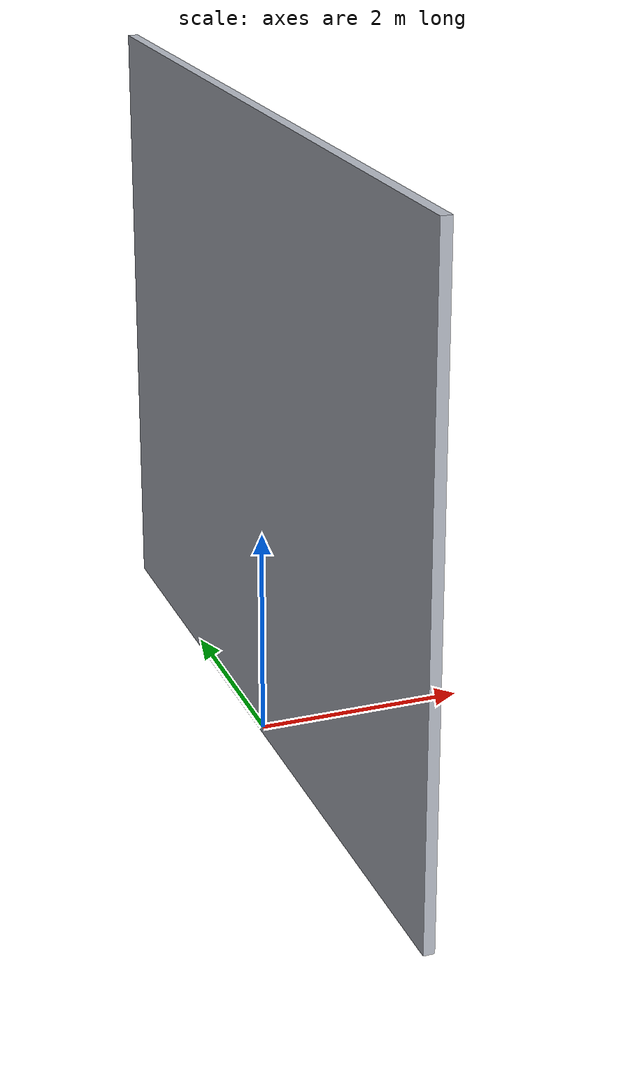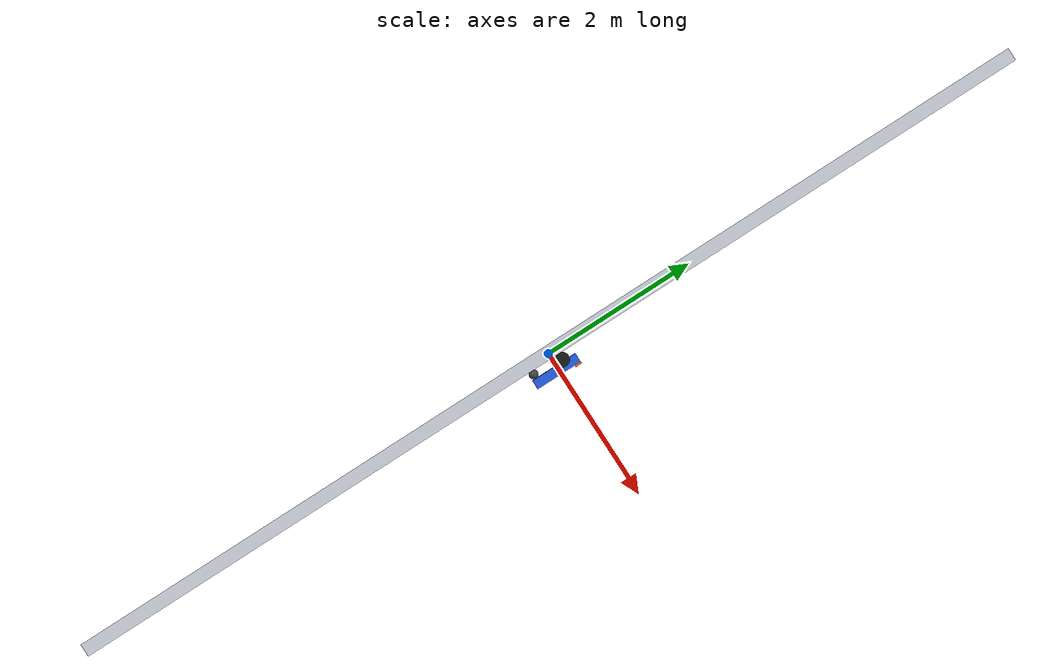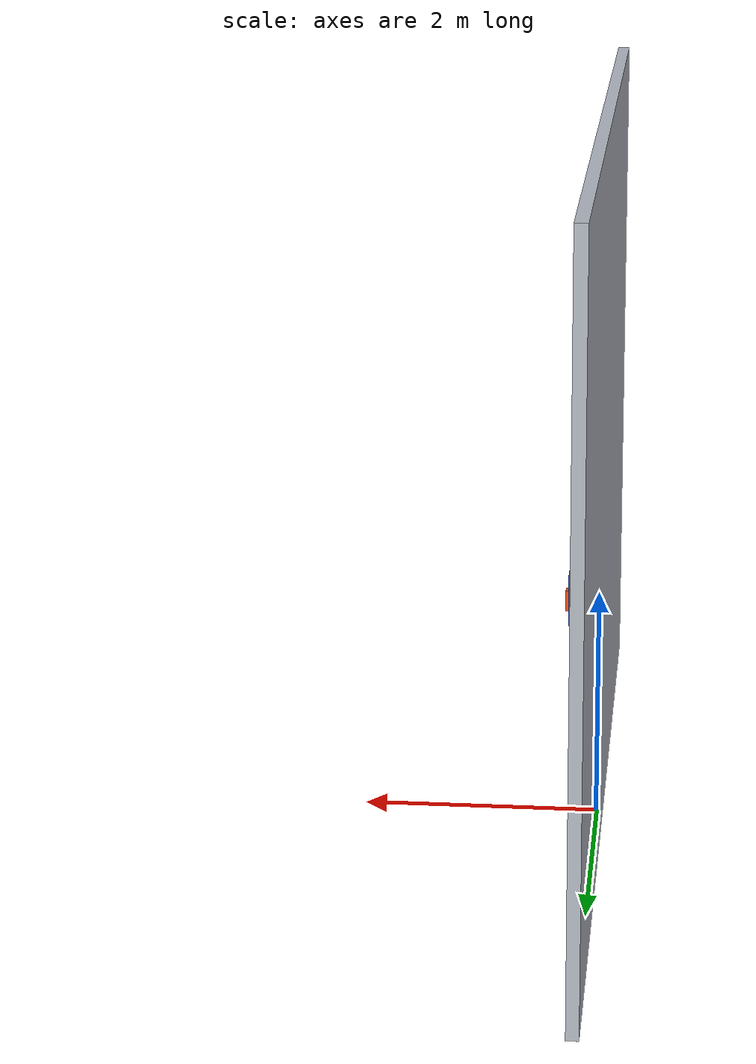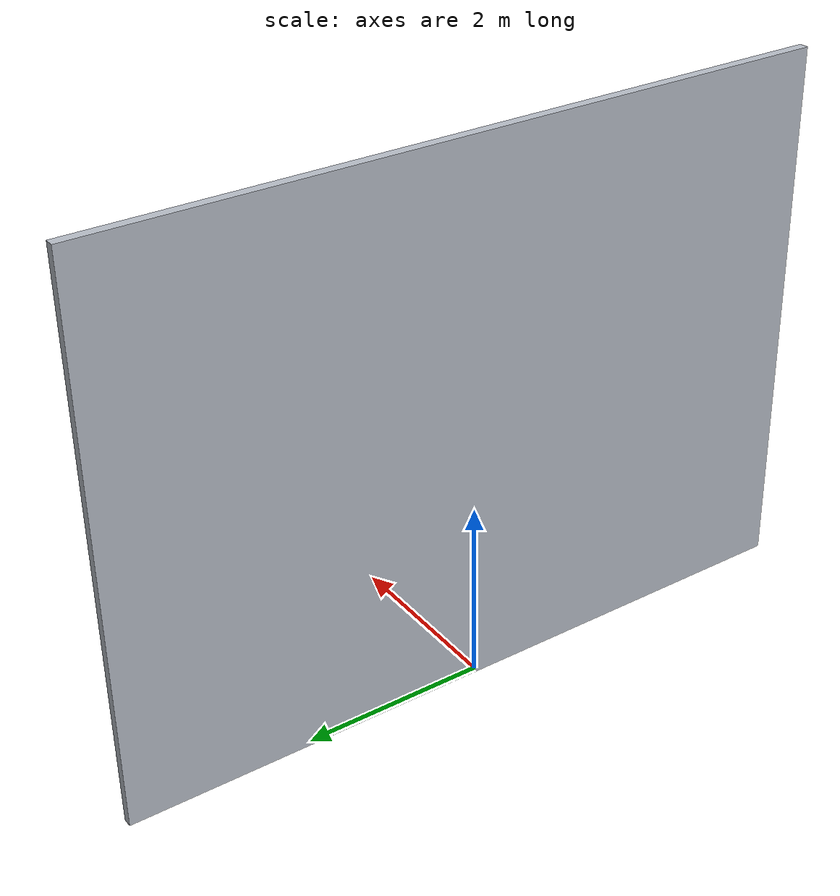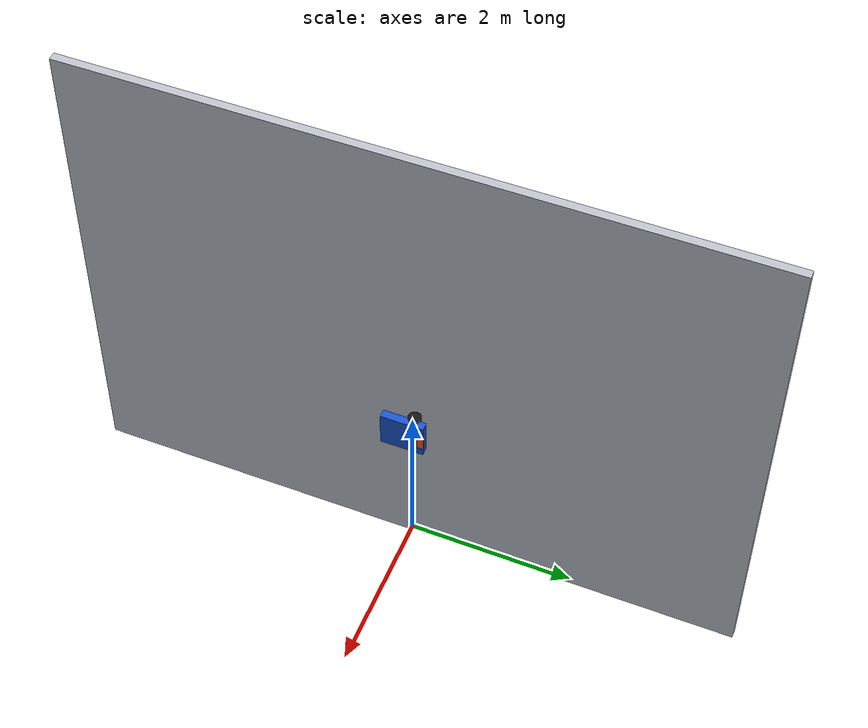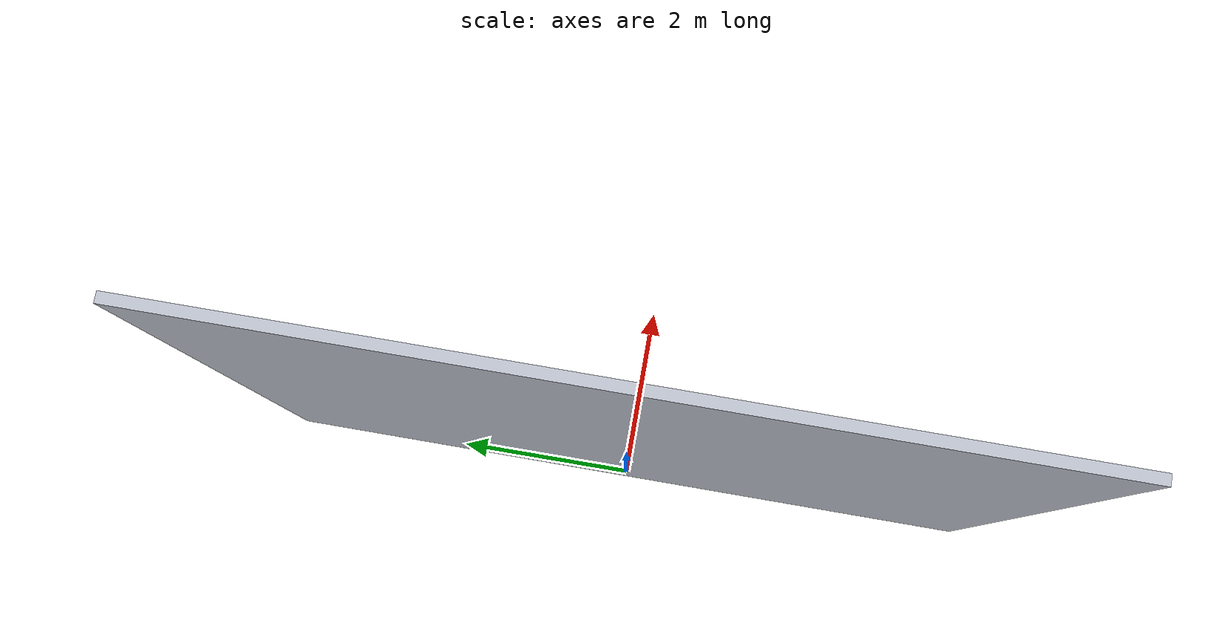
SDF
<?xml version="1.0"?>
<sdf version="1.10">
  <world name="climbot_wall">
    <gravity>0 0 -9.81</gravity>
    <physics name="physics" type="ignored">
      <max_step_size>0.001</max_step_size>
      <real_time_factor>1.0</real_time_factor>
    </physics>

    <plugin filename="gz-sim-physics-system"
            name="gz::sim::systems::Physics"/>
    <plugin filename="gz-sim-user-commands-system"
            name="gz::sim::systems::UserCommands"/>
    <plugin filename="gz-sim-scene-broadcaster-system"
            name="gz::sim::systems::SceneBroadcaster"/>
    <plugin filename="gz-sim-apply-link-wrench-system"
            name="gz::sim::systems::ApplyLinkWrench">
      <persistent>
        <entity_name>climbot</entity_name>
        <entity_type>model</entity_type>
        <force>-220 0 0</force>
        <torque>0 0 0</torque>
      </persistent>
    </plugin>

    <light type="directional" name="sun">
      <cast_shadows>true</cast_shadows>
      <pose>4 -2 8 0 0 0</pose>
      <diffuse>0.9 0.9 0.9 1</diffuse>
      <specular>0.3 0.3 0.3 1</specular>
      <direction>-1 0.2 -0.4</direction>
    </light>

    <model name="wall">
      <static>true</static>
      <link name="wall_link">
        <pose>0 0 3 0 0 0</pose>
        <collision name="wall_collision">
          <geometry>
            <box>
              <size>0.10 8.0 6.0</size>
            </box>
          </geometry>
          <surface>
            <friction>
              <ode>
                <mu>1.1</mu>
                <mu2>1.1</mu2>
              </ode>
            </friction>
          </surface>
        </collision>
        <visual name="wall_visual">
          <geometry>
            <box>
              <size>0.10 8.0 6.0</size>
            </box>
          </geometry>
          <material>
            <ambient>0.62 0.64 0.68 1</ambient>
            <diffuse>0.72 0.74 0.78 1</diffuse>
            <specular>0.12 0.12 0.12 1</specular>
          </material>
        </visual>
      </link>
    </model>

    <include>
      <uri>model://climbot</uri>
      <!-- local +X -> world +Y, local +Y -> world +Z, local +Z -> world +X -->
      <pose>0.051 0 2.0 1.57079632679 0 1.57079632679</pose>
    </include>

    <gui fullscreen="false">
      <plugin filename="MinimalScene" name="3D View">
        <gz-gui>
          <title>Climbot Wall Simulation</title>
          <property type="bool" key="showTitleBar">false</property>
          <property type="string" key="state">docked</property>
        </gz-gui>
        <engine>ogre2</engine>
        <scene>scene</scene>
        <ambient_light>0.5 0.5 0.5</ambient_light>
        <background_color>0.12 0.14 0.18</background_color>
        <camera_pose>5.8 -5.0 3.4 0 0.30 2.35</camera_pose>
      </plugin>
      <plugin filename="WorldControl" name="World control">
        <gz-gui>
          <title>World control</title>
          <property type="bool" key="showTitleBar">false</property>
          <property type="bool" key="resizable">false</property>
          <property type="double" key="height">72</property>
          <property type="double" key="width">121</property>
          <property type="double" key="z">1</property>
          <property type="string" key="state">floating</property>
          <anchors target="3D View">
            <line own="left" target="left"/>
            <line own="bottom" target="bottom"/>
          </anchors>
        </gz-gui>
        <play_pause>true</play_pause>
        <step>true</step>
        <start_paused>false</start_paused>
      </plugin>
      <plugin filename="WorldStats" name="World stats">
        <gz-gui>
          <title>World stats</title>
          <property type="bool" key="showTitleBar">false</property>
          <property type="bool" key="resizable">false</property>
          <property type="double" key="height">110</property>
          <property type="double" key="width">290</property>
          <property type="double" key="z">1</property>
          <property type="string" key="state">floating</property>
          <anchors target="3D View">
            <line own="right" target="right"/>
            <line own="bottom" target="bottom"/>
          </anchors>
        </gz-gui>
        <sim_time>true</sim_time>
        <real_time>true</real_time>
        <real_time_factor>true</real_time_factor>
        <iterations>true</iterations>
      </plugin>
    </gui>
  </world>
</sdf>

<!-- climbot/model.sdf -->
<sdf version="1.10">
  <model name="climbot" canonical_link="base_link">
    <self_collide>false</self_collide>

    <!--
      Robot frame follows REP 103: +X forward, +Y left, +Z away from
      the driving surface. The world rotates this model onto the wall.
    -->
    <link name="base_link">
      <pose>-0.03 0 0.15 0 0 0</pose>
      <inertial>
        <mass>12.0</mass>
        <inertia>
          <ixx>0.2036</ixx>
          <iyy>0.2804</iyy>
          <izz>0.4636</izz>
          <ixy>0</ixy>
          <ixz>0</ixz>
          <iyz>0</iyz>
        </inertia>
      </inertial>
      <collision name="base_collision">
        <geometry>
          <box>
            <size>0.52 0.44 0.10</size>
          </box>
        </geometry>
      </collision>
      <visual name="base_visual">
        <geometry>
          <box>
            <size>0.52 0.44 0.10</size>
          </box>
        </geometry>
        <material>
          <ambient>0.08 0.22 0.55 1</ambient>
          <diffuse>0.10 0.32 0.80 1</diffuse>
          <specular>0.25 0.25 0.25 1</specular>
        </material>
      </visual>
      <visual name="front_marker">
        <pose>0.23 0 0.061 0 0 0</pose>
        <geometry>
          <box>
            <size>0.07 0.18 0.025</size>
          </box>
        </geometry>
        <material>
          <ambient>0.9 0.25 0.05 1</ambient>
          <diffuse>1.0 0.32 0.05 1</diffuse>
        </material>
      </visual>
    </link>

    <link name="left_wheel_link">
      <pose>0.08 0.215 0.08 1.57079632679 0 0</pose>
      <inertial>
        <mass>1.0</mass>
        <inertia>
          <ixx>0.00177</ixx>
          <iyy>0.00177</iyy>
          <izz>0.00320</izz>
          <ixy>0</ixy>
          <ixz>0</ixz>
          <iyz>0</iyz>
        </inertia>
      </inertial>
      <collision name="left_wheel_collision">
        <geometry>
          <cylinder>
            <radius>0.08</radius>
            <length>0.045</length>
          </cylinder>
        </geometry>
        <surface>
          <friction>
            <ode>
              <mu>1.1</mu>
              <mu2>1.1</mu2>
              <fdir1>0 0 1</fdir1>
            </ode>
          </friction>
        </surface>
      </collision>
      <visual name="left_wheel_visual">
        <geometry>
          <cylinder>
            <radius>0.08</radius>
            <length>0.045</length>
          </cylinder>
        </geometry>
        <material>
          <ambient>0.04 0.04 0.04 1</ambient>
          <diffuse>0.08 0.08 0.08 1</diffuse>
        </material>
      </visual>
    </link>

    <link name="right_wheel_link">
      <pose>0.08 -0.215 0.08 1.57079632679 0 0</pose>
      <inertial>
        <mass>1.0</mass>
        <inertia>
          <ixx>0.00177</ixx>
          <iyy>0.00177</iyy>
          <izz>0.00320</izz>
          <ixy>0</ixy>
          <ixz>0</ixz>
          <iyz>0</iyz>
        </inertia>
      </inertial>
      <collision name="right_wheel_collision">
        <geometry>
          <cylinder>
            <radius>0.08</radius>
            <length>0.045</length>
          </cylinder>
        </geometry>
        <surface>
          <friction>
            <ode>
              <mu>1.1</mu>
              <mu2>1.1</mu2>
              <fdir1>0 0 1</fdir1>
            </ode>
          </friction>
        </surface>
      </collision>
      <visual name="right_wheel_visual">
        <geometry>
          <cylinder>
            <radius>0.08</radius>
            <length>0.045</length>
          </cylinder>
        </geometry>
        <material>
          <ambient>0.04 0.04 0.04 1</ambient>
          <diffuse>0.08 0.08 0.08 1</diffuse>
        </material>
      </visual>
    </link>

    <link name="caster_ball_link">
      <pose>-0.25 0 0.05 0 0 0</pose>
      <inertial>
        <mass>0.5</mass>
        <inertia>
          <ixx>0.0005</ixx>
          <iyy>0.0005</iyy>
          <izz>0.0005</izz>
          <ixy>0</ixy>
          <ixz>0</ixz>
          <iyz>0</iyz>
        </inertia>
      </inertial>
      <collision name="caster_collision">
        <geometry>
          <sphere>
            <radius>0.05</radius>
          </sphere>
        </geometry>
        <surface>
          <friction>
            <ode>
              <mu>0.35</mu>
              <mu2>0.35</mu2>
            </ode>
          </friction>
        </surface>
      </collision>
      <visual name="caster_visual">
        <geometry>
          <sphere>
            <radius>0.05</radius>
          </sphere>
        </geometry>
        <material>
          <ambient>0.15 0.15 0.15 1</ambient>
          <diffuse>0.25 0.25 0.25 1</diffuse>
        </material>
      </visual>
    </link>

    <joint name="left_wheel_joint" type="revolute">
      <parent>base_link</parent>
      <child>left_wheel_link</child>
      <axis>
        <xyz expressed_in="__model__">0 1 0</xyz>
        <limit>
          <lower>-1e16</lower>
          <upper>1e16</upper>
          <effort>80</effort>
          <velocity>30</velocity>
        </limit>
        <dynamics>
          <damping>0.05</damping>
        </dynamics>
      </axis>
    </joint>

    <joint name="right_wheel_joint" type="revolute">
      <parent>base_link</parent>
      <child>right_wheel_link</child>
      <axis>
        <xyz expressed_in="__model__">0 1 0</xyz>
        <limit>
          <lower>-1e16</lower>
          <upper>1e16</upper>
          <effort>80</effort>
          <velocity>30</velocity>
        </limit>
        <dynamics>
          <damping>0.05</damping>
        </dynamics>
      </axis>
    </joint>

    <joint name="caster_ball_joint" type="ball">
      <parent>base_link</parent>
      <child>caster_ball_link</child>
    </joint>

    <plugin filename="gz-sim-diff-drive-system"
            name="gz::sim::systems::DiffDrive">
      <left_joint>left_wheel_joint</left_joint>
      <right_joint>right_wheel_joint</right_joint>
      <wheel_separation>0.43</wheel_separation>
      <wheel_radius>0.08</wheel_radius>
      <topic>/cmd_vel</topic>
      <odom_topic>/model/climbot/odometry</odom_topic>
      <tf_topic>/model/climbot/tf</tf_topic>
      <frame_id>odom</frame_id>
      <child_frame_id>base_link</child_frame_id>
      <odom_publish_frequency>50</odom_publish_frequency>
      <max_linear_velocity>0.30</max_linear_velocity>
      <min_linear_velocity>-0.30</min_linear_velocity>
      <max_angular_velocity>1.20</max_angular_velocity>
      <min_angular_velocity>-1.20</min_angular_velocity>
      <max_linear_acceleration>0.40</max_linear_acceleration>
      <min_linear_acceleration>-0.40</min_linear_acceleration>
      <max_angular_acceleration>1.50</max_angular_acceleration>
      <min_angular_acceleration>-1.50</min_angular_acceleration>
    </plugin>

    <plugin filename="gz-sim-pose-publisher-system"
            name="gz::sim::systems::PosePublisher">
      <publish_model_pose>true</publish_model_pose>
      <publish_link_pose>true</publish_link_pose>
      <use_pose_vector_msg>true</use_pose_vector_msg>
      <update_frequency>50</update_frequency>
    </plugin>
  </model>
</sdf>
